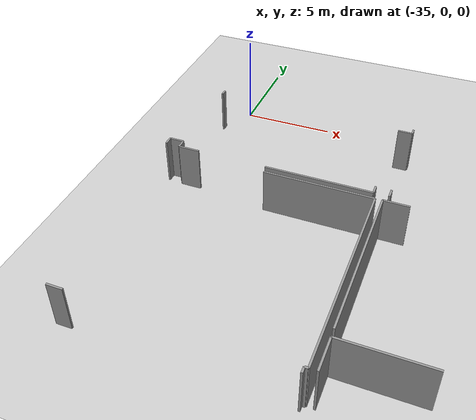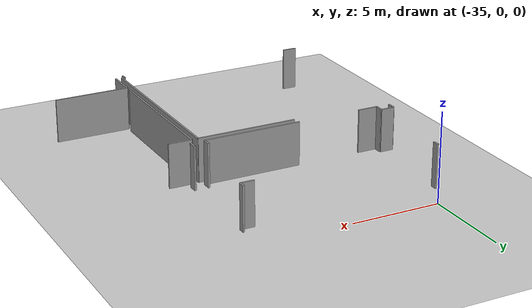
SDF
<sdf version="1.6">
 <world name="default">
  <model name="ground_plane">
   <static>1</static>
   <link name="link">
    <collision name="collision">
     <geometry><plane><normal>0 0 1</normal><size>100 100</size></plane></geometry>
     <surface><friction><ode><mu>100</mu><mu2>50</mu2></ode></friction></surface>
    </collision>
    <visual name="visual">
     <cast_shadows>0</cast_shadows>
     <geometry><plane><normal>0 0 1</normal><size>100 100</size></plane></geometry>
     <material>
      <script><uri>file://media/materials/scripts/gazebo.material</uri><name>Gazebo/Grey</name></script>
     </material>
    </visual>
   </link>
  </model>
  <model name="50015847">
   <static>1</static>
   <link name="Wall_1025">
    <collision name="Wall_1025_Collision">
     <geometry><box><size>8.24248741547 0.1 2.5</size></box></geometry>
     <pose>4.12124370773 0 1.25 0 0 0</pose>
    </collision>
    <visual name="Wall_1025_Visual">
     <pose>4.12124370773 0 1.25 0 0 0</pose>
     <geometry><box><size>8.24248741547 0.1 2.5</size></box></geometry>
     <material>
      <script><uri>file://media/materials/scripts/gazebo.material</uri><name>Gazebo/Grey</name></script>
      <ambient>1 1 1 1</ambient>
     </material>
    </visual>
    <pose>107.318859002 -60.1878781716 0 0 0 1.57079632679</pose>
   </link>
   <link name="Wall_1026">
    <collision name="Wall_1026_Collision">
     <geometry><box><size>1.33192657752 0.1 2.5</size></box></geometry>
     <pose>0.665963288758 0 1.25 0 0 0</pose>
    </collision>
    <visual name="Wall_1026_Visual">
     <pose>0.665963288758 0 1.25 0 0 0</pose>
     <geometry><box><size>1.33192657752 0.1 2.5</size></box></geometry>
     <material>
      <script><uri>file://media/materials/scripts/gazebo.material</uri><name>Gazebo/Grey</name></script>
      <ambient>1 1 1 1</ambient>
     </material>
    </visual>
    <pose>107.318859002 -51.9453907561 0 0 0 0.0</pose>
   </link>
   <link name="Wall_1038">
    <collision name="Wall_1038_Collision">
     <geometry><box><size>5.69354756699 0.1 2.5</size></box></geometry>
     <pose>2.8467737835 0 1.25 0 0 0</pose>
    </collision>
    <visual name="Wall_1038_Visual">
     <pose>2.8467737835 0 1.25 0 0 0</pose>
     <geometry><box><size>5.69354756699 0.1 2.5</size></box></geometry>
     <material>
      <script><uri>file://media/materials/scripts/gazebo.material</uri><name>Gazebo/Grey</name></script>
      <ambient>1 1 1 1</ambient>
     </material>
    </visual>
    <pose>101.266588702 -51.9614074338 0 0 0 0.0</pose>
   </link>
   <link name="Wall_1039">
    <collision name="Wall_1039_Collision">
     <geometry><box><size>10.3055880409 0.1 2.5</size></box></geometry>
     <pose>5.15279402044 0 1.25 0 0 0</pose>
    </collision>
    <visual name="Wall_1039_Visual">
     <pose>5.15279402044 0 1.25 0 0 0</pose>
     <geometry><box><size>10.3055880409 0.1 2.5</size></box></geometry>
     <material>
      <script><uri>file://media/materials/scripts/gazebo.material</uri><name>Gazebo/Grey</name></script>
      <ambient>1 1 1 1</ambient>
     </material>
    </visual>
    <pose>106.960136269 -51.9614074338 0 0 0 -1.57079632679</pose>
   </link>
   <link name="Wall_1040">
    <collision name="Wall_1040_Collision">
     <geometry><box><size>0.168302232166 0.1 2.5</size></box></geometry>
     <pose>0.0841511160828 0 1.25 0 0 0</pose>
    </collision>
    <visual name="Wall_1040_Visual">
     <pose>0.0841511160828 0 1.25 0 0 0</pose>
     <geometry><box><size>0.168302232166 0.1 2.5</size></box></geometry>
     <material>
      <script><uri>file://media/materials/scripts/gazebo.material</uri><name>Gazebo/Grey</name></script>
      <ambient>1 1 1 1</ambient>
     </material>
    </visual>
    <pose>106.960136269 -62.2669954747 0 0 0 3.14159265359</pose>
   </link>
   <link name="Wall_1041">
    <collision name="Wall_1041_Collision">
     <geometry><box><size>0.289062897239 0.1 2.5</size></box></geometry>
     <pose>0.14453144862 0 1.25 0 0 0</pose>
    </collision>
    <visual name="Wall_1041_Visual">
     <pose>0.14453144862 0 1.25 0 0 0</pose>
     <geometry><box><size>0.289062897239 0.1 2.5</size></box></geometry>
     <material>
      <script><uri>file://media/materials/scripts/gazebo.material</uri><name>Gazebo/Grey</name></script>
      <ambient>1 1 1 1</ambient>
     </material>
    </visual>
    <pose>106.791834037 -62.2669954747 0 0 0 -1.57079632679</pose>
   </link>
   <link name="Wall_1044">
    <collision name="Wall_1044_Collision">
     <geometry><box><size>0.816850561855 0.1 2.5</size></box></geometry>
     <pose>0.408425280927 0 1.25 0 0 0</pose>
    </collision>
    <visual name="Wall_1044_Visual">
     <pose>0.408425280927 0 1.25 0 0 0</pose>
     <geometry><box><size>0.816850561855 0.1 2.5</size></box></geometry>
     <material>
      <script><uri>file://media/materials/scripts/gazebo.material</uri><name>Gazebo/Grey</name></script>
      <ambient>1 1 1 1</ambient>
     </material>
    </visual>
    <pose>96.3837901053 -62.2954695683 0 0 0 3.14159265359</pose>
   </link>
   <link name="Wall_1116">
    <collision name="Wall_1116_Collision">
     <geometry><box><size>0.382366400569 0.1 2.5</size></box></geometry>
     <pose>0.191183200285 0 1.25 0 0 0</pose>
    </collision>
    <visual name="Wall_1116_Visual">
     <pose>0.191183200285 0 1.25 0 0 0</pose>
     <geometry><box><size>0.382366400569 0.1 2.5</size></box></geometry>
     <material>
      <script><uri>file://media/materials/scripts/gazebo.material</uri><name>Gazebo/Grey</name></script>
      <ambient>1 1 1 1</ambient>
     </material>
    </visual>
    <pose>96.3817562414 -45.9203233843 0 0 0 1.57079632679</pose>
   </link>
   <link name="Wall_1120">
    <collision name="Wall_1120_Collision">
     <geometry><box><size>0.766258199014 0.1 2.5</size></box></geometry>
     <pose>0.383129099507 0 1.25 0 0 0</pose>
    </collision>
    <visual name="Wall_1120_Visual">
     <pose>0.383129099507 0 1.25 0 0 0</pose>
     <geometry><box><size>0.766258199014 0.1 2.5</size></box></geometry>
     <material>
      <script><uri>file://media/materials/scripts/gazebo.material</uri><name>Gazebo/Grey</name></script>
      <ambient>1 1 1 1</ambient>
     </material>
    </visual>
    <pose>106.78446128 -45.9053236386 0 0 0 0.0</pose>
   </link>
   <link name="Wall_1121">
    <collision name="Wall_1121_Collision">
     <geometry><box><size>0.361265063304 0.1 2.5</size></box></geometry>
     <pose>0.180632531652 0 1.25 0 0 0</pose>
    </collision>
    <visual name="Wall_1121_Visual">
     <pose>0.180632531652 0 1.25 0 0 0</pose>
     <geometry><box><size>0.361265063304 0.1 2.5</size></box></geometry>
     <material>
      <script><uri>file://media/materials/scripts/gazebo.material</uri><name>Gazebo/Grey</name></script>
      <ambient>1 1 1 1</ambient>
     </material>
    </visual>
    <pose>107.550719479 -45.9053236386 0 0 0 1.57079632679</pose>
   </link>
   <link name="Wall_1249">
    <collision name="Wall_1249_Collision">
     <geometry><box><size>0.487873086897 0.1 2.5</size></box></geometry>
     <pose>0.243936543448 0 1.25 0 0 0</pose>
    </collision>
    <visual name="Wall_1249_Visual">
     <pose>0.243936543448 0 1.25 0 0 0</pose>
     <geometry><box><size>0.487873086897 0.1 2.5</size></box></geometry>
     <material>
      <script><uri>file://media/materials/scripts/gazebo.material</uri><name>Gazebo/Grey</name></script>
      <ambient>1 1 1 1</ambient>
     </material>
    </visual>
    <pose>107.560634566 -51.5421772512 0 0 0 1.57079632679</pose>
   </link>
   <link name="Wall_1251">
    <collision name="Wall_1251_Collision">
     <geometry><box><size>0.505415162455 0.1 2.5</size></box></geometry>
     <pose>0.252707581227 0 1.25 0 0 0</pose>
    </collision>
    <visual name="Wall_1251_Visual">
     <pose>0.252707581227 0 1.25 0 0 0</pose>
     <geometry><box><size>0.505415162455 0.1 2.5</size></box></geometry>
     <material>
      <script><uri>file://media/materials/scripts/gazebo.material</uri><name>Gazebo/Grey</name></script>
      <ambient>1 1 1 1</ambient>
     </material>
    </visual>
    <pose>106.78013932 -51.0543041643 0 0 0 -1.57079632679</pose>
   </link>
   <link name="Wall_1252">
    <collision name="Wall_1252_Collision">
     <geometry><box><size>5.59109167641 0.1 2.5</size></box></geometry>
     <pose>2.79554583821 0 1.25 0 0 0</pose>
    </collision>
    <visual name="Wall_1252_Visual">
     <pose>2.79554583821 0 1.25 0 0 0</pose>
     <geometry><box><size>5.59109167641 0.1 2.5</size></box></geometry>
     <material>
      <script><uri>file://media/materials/scripts/gazebo.material</uri><name>Gazebo/Grey</name></script>
      <ambient>1 1 1 1</ambient>
     </material>
    </visual>
    <pose>106.78013932 -51.5597193268 0 0 0 3.14159265359</pose>
   </link>
   <link name="Wall_1253">
    <collision name="Wall_1253_Collision">
     <geometry><box><size>1.13845528042 0.1 2.5</size></box></geometry>
     <pose>0.569227640209 0 1.25 0 0 0</pose>
    </collision>
    <visual name="Wall_1253_Visual">
     <pose>0.569227640209 0 1.25 0 0 0</pose>
     <geometry><box><size>1.13845528042 0.1 2.5</size></box></geometry>
     <material>
      <script><uri>file://media/materials/scripts/gazebo.material</uri><name>Gazebo/Grey</name></script>
      <ambient>1 1 1 1</ambient>
     </material>
    </visual>
    <pose>97.4993644176 -51.5597193268 0 0 0 3.14159265359</pose>
   </link>
   <link name="Wall_1254">
    <collision name="Wall_1254_Collision">
     <geometry><box><size>0.499567803936 0.1 2.5</size></box></geometry>
     <pose>0.249783901968 0 1.25 0 0 0</pose>
    </collision>
    <visual name="Wall_1254_Visual">
     <pose>0.249783901968 0 1.25 0 0 0</pose>
     <geometry><box><size>0.499567803936 0.1 2.5</size></box></geometry>
     <material>
      <script><uri>file://media/materials/scripts/gazebo.material</uri><name>Gazebo/Grey</name></script>
      <ambient>1 1 1 1</ambient>
     </material>
    </visual>
    <pose>96.3609091371 -51.5597193268 0 0 0 1.57079632679</pose>
   </link>
   <link name="Wall_1255">
    <collision name="Wall_1255_Collision">
     <geometry><box><size>0.77286825647 0.1 2.5</size></box></geometry>
     <pose>0.386434128235 0 1.25 0 0 0</pose>
    </collision>
    <visual name="Wall_1255_Visual">
     <pose>0.386434128235 0 1.25 0 0 0</pose>
     <geometry><box><size>0.77286825647 0.1 2.5</size></box></geometry>
     <material>
      <script><uri>file://media/materials/scripts/gazebo.material</uri><name>Gazebo/Grey</name></script>
      <ambient>1 1 1 1</ambient>
     </material>
    </visual>
    <pose>96.3609091371 -51.0601515229 0 0 0 3.14159265359</pose>
   </link>
   <link name="Wall_1256">
    <collision name="Wall_1256_Collision">
     <geometry><box><size>0.482025728377 0.1 2.5</size></box></geometry>
     <pose>0.241012864189 0 1.25 0 0 0</pose>
    </collision>
    <visual name="Wall_1256_Visual">
     <pose>0.241012864189 0 1.25 0 0 0</pose>
     <geometry><box><size>0.482025728377 0.1 2.5</size></box></geometry>
     <material>
      <script><uri>file://media/materials/scripts/gazebo.material</uri><name>Gazebo/Grey</name></script>
      <ambient>1 1 1 1</ambient>
     </material>
    </visual>
    <pose>95.5880408807 -51.0601515229 0 0 0 -1.57079632679</pose>
   </link>
   <link name="Wall_1655">
    <collision name="Wall_1655_Collision">
     <geometry><box><size>1.68047999186 0.1 2.5</size></box></geometry>
     <pose>0.840239995932 0 1.25 0 0 0</pose>
    </collision>
    <visual name="Wall_1655_Visual">
     <pose>0.840239995932 0 1.25 0 0 0</pose>
     <geometry><box><size>1.68047999186 0.1 2.5</size></box></geometry>
     <material>
      <script><uri>file://media/materials/scripts/gazebo.material</uri><name>Gazebo/Grey</name></script>
      <ambient>1 1 1 1</ambient>
     </material>
    </visual>
    <pose>107.324960594 -62.2733512991 0 0 0 1.57079632679</pose>
   </link>
   <link name="Wall_1656">
    <collision name="Wall_1656_Collision">
     <geometry><box><size>4.26145319571 0.1 2.5</size></box></geometry>
     <pose>2.13072659785 0 1.25 0 0 0</pose>
    </collision>
    <visual name="Wall_1656_Visual">
     <pose>2.13072659785 0 1.25 0 0 0</pose>
     <geometry><box><size>4.26145319571 0.1 2.5</size></box></geometry>
     <material>
      <script><uri>file://media/materials/scripts/gazebo.material</uri><name>Gazebo/Grey</name></script>
      <ambient>1 1 1 1</ambient>
     </material>
    </visual>
    <pose>107.324960594 -60.5928713073 0 0 0 0.0</pose>
   </link>
   <pose>-132.35 43.9162226064 0 0 0 0</pose>
  </model>
 </world>
</sdf>
